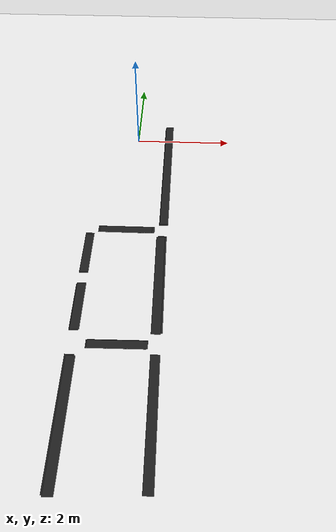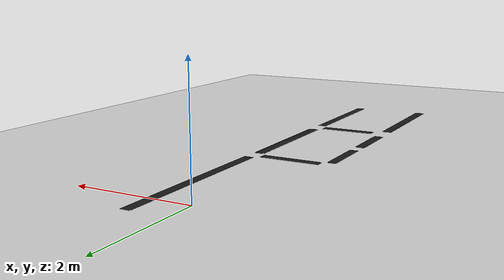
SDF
<sdf version="1.7">
 <world name="default">
  <model name="ground_plane">
   <static>1</static>
   <link name="link">
    <collision name="collision">
     <geometry><plane><normal>0 0 1</normal><size>100 100</size></plane></geometry>
     <surface>
      <contact><collide_bitmask>65535</collide_bitmask></contact>
      <friction><ode><mu>100</mu><mu2>50</mu2></ode></friction>
     </surface>
    </collision>
    <visual name="visual">
     <cast_shadows>0</cast_shadows>
     <geometry><plane><normal>0 0 1</normal><size>100 100</size></plane></geometry>
     <material>
      <script><uri>file://media/materials/scripts/gazebo.material</uri><name>Gazebo/White</name></script>
     </material>
    </visual>
   </link>
  </model>
  <model name="unit_box_clone_0_clone_clone_0">
   <link name="link">
    <inertial>
     <mass>1</mass>
     <inertia>
      <ixx>0.166667</ixx>
      <ixy>0</ixy>
      <ixz>0</ixz>
      <iyy>0.166667</iyy>
      <iyz>0</iyz>
      <izz>0.166667</izz>
     </inertia>
    </inertial>
    <visual name="visual">
     <geometry><box><size>1 0.160776 0.000937</size></box></geometry>
     <material>
      <script><name>Gazebo/Black</name><uri>file://media/materials/scripts/gazebo.material</uri></script>
      <shader type="pixel"><normal_map>__default__</normal_map></shader>
      <ambient>0 0 0 1</ambient>
      <diffuse>0 0 0 1</diffuse>
      <specular>0.1 0.1 0.1 1</specular>
      <emissive>0 0 0 1</emissive>
     </material>
    </visual>
    <collision name="collision">
     <geometry><box><size>1 0.160776 0.000937</size></box></geometry>
     <surface>
      <friction>
       <ode><mu>1</mu><mu2>1</mu2><fdir1>0 0 0</fdir1><slip1>0</slip1><slip2>0</slip2></ode>
       <torsional>
        <coefficient>1</coefficient>
        <patch_radius>0</patch_radius>
        <surface_radius>0</surface_radius>
        <use_patch_radius>1</use_patch_radius>
        <ode><slip>0</slip></ode>
       </torsional>
      </friction>
      <bounce><restitution_coefficient>0</restitution_coefficient><threshold>1e+06</threshold></bounce>
      <contact>
       <collide_without_contact>0</collide_without_contact>
       <collide_without_contact_bitmask>1</collide_without_contact_bitmask>
       <collide_bitmask>1</collide_bitmask>
       <ode>
        <soft_cfm>0</soft_cfm>
        <soft_erp>0.2</soft_erp>
        <kp>1e+13</kp>
        <kd>1</kd>
        <max_vel>0.01</max_vel>
        <min_depth>0</min_depth>
       </ode>
       <bullet>
        <split_impulse>1</split_impulse>
        <split_impulse_penetration_threshold>-0.01</split_impulse_penetration_threshold>
        <soft_cfm>0</soft_cfm>
        <soft_erp>0.2</soft_erp>
        <kp>1e+13</kp>
        <kd>1</kd>
       </bullet>
      </contact>
     </surface>
    </collision>
   </link>
   <static>0</static>
   <pose>0.00749 -2.7906 0.002011 6e-06 0.000285 -7.8e-05</pose>
  </model>
  <model name="unit_box_clone_0_clone_clone_clone_clone_clone_clone_clone_0_clone">
   <link name="link">
    <inertial>
     <mass>1</mass>
     <inertia>
      <ixx>0.166667</ixx>
      <ixy>0</ixy>
      <ixz>0</ixz>
      <iyy>0.166667</iyy>
      <iyz>0</iyz>
      <izz>0.166667</izz>
     </inertia>
    </inertial>
    <visual name="visual">
     <geometry><box><size>3.16167 0.161571 0.000937</size></box></geometry>
     <material>
      <script><name>Gazebo/Black</name><uri>file://media/materials/scripts/gazebo.material</uri></script>
      <shader type="pixel"><normal_map>__default__</normal_map></shader>
      <ambient>0 0 0 1</ambient>
      <diffuse>0 0 0 1</diffuse>
      <specular>0.1 0.1 0.1 1</specular>
      <emissive>0 0 0 1</emissive>
     </material>
    </visual>
    <collision name="collision">
     <geometry><box><size>3.16167 0.161571 0.000937</size></box></geometry>
     <surface>
      <friction>
       <ode><mu>1</mu><mu2>1</mu2><fdir1>0 0 0</fdir1><slip1>0</slip1><slip2>0</slip2></ode>
       <torsional>
        <coefficient>1</coefficient>
        <patch_radius>0</patch_radius>
        <surface_radius>0</surface_radius>
        <use_patch_radius>1</use_patch_radius>
        <ode><slip>0</slip></ode>
       </torsional>
      </friction>
      <bounce><restitution_coefficient>0</restitution_coefficient><threshold>1e+06</threshold></bounce>
      <contact>
       <collide_without_contact>0</collide_without_contact>
       <collide_without_contact_bitmask>1</collide_without_contact_bitmask>
       <collide_bitmask>1</collide_bitmask>
       <ode>
        <soft_cfm>0</soft_cfm>
        <soft_erp>0.2</soft_erp>
        <kp>1e+13</kp>
        <kd>1</kd>
        <max_vel>0.01</max_vel>
        <min_depth>0</min_depth>
       </ode>
       <bullet>
        <split_impulse>1</split_impulse>
        <split_impulse_penetration_threshold>-0.01</split_impulse_penetration_threshold>
        <soft_cfm>0</soft_cfm>
        <soft_erp>0.2</soft_erp>
        <kp>1e+13</kp>
        <kd>1</kd>
       </bullet>
      </contact>
     </surface>
    </collision>
   </link>
   <static>0</static>
   <pose>0.685812 -1.06745 -0.000124 -1.3e-05 -0.000376 -1.57339</pose>
  </model>
  <model name="unit_box_clone_0_clone_clone_0_clone_clone">
   <link name="link">
    <inertial>
     <mass>1</mass>
     <inertia>
      <ixx>0.166667</ixx>
      <ixy>0</ixy>
      <ixz>0</ixz>
      <iyy>0.166667</iyy>
      <iyz>0</iyz>
      <izz>0.166667</izz>
     </inertia>
    </inertial>
    <visual name="visual">
     <geometry><box><size>2.22866 0.160776 0.000937</size></box></geometry>
     <material>
      <script><name>Gazebo/Black</name><uri>file://media/materials/scripts/gazebo.material</uri></script>
      <shader type="pixel"><normal_map>__default__</normal_map></shader>
      <ambient>0 0 0 1</ambient>
      <diffuse>0 0 0 1</diffuse>
      <specular>0.1 0.1 0.1 1</specular>
      <emissive>0 0 0 1</emissive>
     </material>
    </visual>
    <collision name="collision">
     <geometry><box><size>2.22866 0.160776 0.000937</size></box></geometry>
     <surface>
      <friction>
       <ode><mu>1</mu><mu2>1</mu2><fdir1>0 0 0</fdir1><slip1>0</slip1><slip2>0</slip2></ode>
       <torsional>
        <coefficient>1</coefficient>
        <patch_radius>0</patch_radius>
        <surface_radius>0</surface_radius>
        <use_patch_radius>1</use_patch_radius>
        <ode><slip>0</slip></ode>
       </torsional>
      </friction>
      <bounce><restitution_coefficient>0</restitution_coefficient><threshold>1e+06</threshold></bounce>
      <contact>
       <collide_without_contact>0</collide_without_contact>
       <collide_without_contact_bitmask>1</collide_without_contact_bitmask>
       <collide_bitmask>1</collide_bitmask>
       <ode>
        <soft_cfm>0</soft_cfm>
        <soft_erp>0.2</soft_erp>
        <kp>1e+13</kp>
        <kd>1</kd>
        <max_vel>0.01</max_vel>
        <min_depth>0</min_depth>
       </ode>
       <bullet>
        <split_impulse>1</split_impulse>
        <split_impulse_penetration_threshold>-0.01</split_impulse_penetration_threshold>
        <soft_cfm>0</soft_cfm>
        <soft_erp>0.2</soft_erp>
        <kp>1e+13</kp>
        <kd>1</kd>
       </bullet>
      </contact>
     </surface>
    </collision>
   </link>
   <static>0</static>
   <pose>0.676438 -4.06335 0.000413 -0 -5e-05 -1.56233</pose>
  </model>
  <model name="unit_box_clone_0_clone_clone_0_clone_clone_clone_1">
   <link name="link">
    <inertial>
     <mass>1</mass>
     <inertia>
      <ixx>0.166667</ixx>
      <ixy>0</ixy>
      <ixz>0</ixz>
      <iyy>0.166667</iyy>
      <iyz>0</iyz>
      <izz>0.166667</izz>
     </inertia>
    </inertial>
    <visual name="visual">
     <geometry><box><size>1 0.160776 0.000937</size></box></geometry>
     <material>
      <script><name>Gazebo/Black</name><uri>file://media/materials/scripts/gazebo.material</uri></script>
      <shader type="pixel"><normal_map>__default__</normal_map></shader>
      <ambient>0 0 0 1</ambient>
      <diffuse>0 0 0 1</diffuse>
      <specular>0.1 0.1 0.1 1</specular>
      <emissive>0 0 0 1</emissive>
     </material>
    </visual>
    <collision name="collision">
     <geometry><box><size>1 0.160776 0.000937</size></box></geometry>
     <surface>
      <friction>
       <ode><mu>1</mu><mu2>1</mu2><fdir1>0 0 0</fdir1><slip1>0</slip1><slip2>0</slip2></ode>
       <torsional>
        <coefficient>1</coefficient>
        <patch_radius>0</patch_radius>
        <surface_radius>0</surface_radius>
        <use_patch_radius>1</use_patch_radius>
        <ode><slip>0</slip></ode>
       </torsional>
      </friction>
      <bounce><restitution_coefficient>0</restitution_coefficient><threshold>1e+06</threshold></bounce>
      <contact>
       <collide_without_contact>0</collide_without_contact>
       <collide_without_contact_bitmask>1</collide_without_contact_bitmask>
       <collide_bitmask>1</collide_bitmask>
       <ode>
        <soft_cfm>0</soft_cfm>
        <soft_erp>0.2</soft_erp>
        <kp>1e+13</kp>
        <kd>1</kd>
        <max_vel>0.01</max_vel>
        <min_depth>0</min_depth>
       </ode>
       <bullet>
        <split_impulse>1</split_impulse>
        <split_impulse_penetration_threshold>-0.01</split_impulse_penetration_threshold>
        <soft_cfm>0</soft_cfm>
        <soft_erp>0.2</soft_erp>
        <kp>1e+13</kp>
        <kd>1</kd>
       </bullet>
      </contact>
     </surface>
    </collision>
   </link>
   <static>0</static>
   <pose>-0.723755 -4.66652 0.000461 0 1.5e-05 -1.56225</pose>
  </model>
  <model name="unit_box_clone_0_clone_clone_0_clone_1">
   <link name="link">
    <inertial>
     <mass>1</mass>
     <inertia>
      <ixx>0.166667</ixx>
      <ixy>0</ixy>
      <ixz>0</ixz>
      <iyy>0.166667</iyy>
      <iyz>0</iyz>
      <izz>0.166667</izz>
     </inertia>
    </inertial>
    <visual name="visual">
     <geometry><box><size>1 0.160776 0.000937</size></box></geometry>
     <material>
      <script><name>Gazebo/Black</name><uri>file://media/materials/scripts/gazebo.material</uri></script>
      <shader type="pixel"><normal_map>__default__</normal_map></shader>
      <ambient>0 0 0 1</ambient>
      <diffuse>0 0 0 1</diffuse>
      <specular>0.1 0.1 0.1 1</specular>
      <emissive>0 0 0 1</emissive>
     </material>
    </visual>
    <collision name="collision">
     <geometry><box><size>1 0.160776 0.000937</size></box></geometry>
     <surface>
      <friction>
       <ode><mu>1</mu><mu2>1</mu2><fdir1>0 0 0</fdir1><slip1>0</slip1><slip2>0</slip2></ode>
       <torsional>
        <coefficient>1</coefficient>
        <patch_radius>0</patch_radius>
        <surface_radius>0</surface_radius>
        <use_patch_radius>1</use_patch_radius>
        <ode><slip>0</slip></ode>
       </torsional>
      </friction>
      <bounce><restitution_coefficient>0</restitution_coefficient><threshold>1e+06</threshold></bounce>
      <contact>
       <collide_without_contact>0</collide_without_contact>
       <collide_without_contact_bitmask>1</collide_without_contact_bitmask>
       <collide_bitmask>1</collide_bitmask>
       <ode>
        <soft_cfm>0</soft_cfm>
        <soft_erp>0.2</soft_erp>
        <kp>1e+13</kp>
        <kd>1</kd>
        <max_vel>0.01</max_vel>
        <min_depth>0</min_depth>
       </ode>
       <bullet>
        <split_impulse>1</split_impulse>
        <split_impulse_penetration_threshold>-0.01</split_impulse_penetration_threshold>
        <soft_cfm>0</soft_cfm>
        <soft_erp>0.2</soft_erp>
        <kp>1e+13</kp>
        <kd>1</kd>
       </bullet>
      </contact>
     </surface>
    </collision>
   </link>
   <static>0</static>
   <pose>0.039276 -5.41097 0.000324 5e-06 0.000288 0.011983</pose>
  </model>
  <model name="unit_box_clone_0_clone_clone_0_clone_clone_clone_2_clone">
   <link name="link">
    <inertial>
     <mass>1</mass>
     <inertia>
      <ixx>0.166667</ixx>
      <ixy>0</ixy>
      <ixz>0</ixz>
      <iyy>0.166667</iyy>
      <iyz>0</iyz>
      <izz>0.166667</izz>
     </inertia>
    </inertial>
    <visual name="visual">
     <geometry><box><size>1 0.160776 0.000937</size></box></geometry>
     <material>
      <script><name>Gazebo/Black</name><uri>file://media/materials/scripts/gazebo.material</uri></script>
      <shader type="pixel"><normal_map>__default__</normal_map></shader>
      <ambient>0 0 0 1</ambient>
      <diffuse>0 0 0 1</diffuse>
      <specular>0.1 0.1 0.1 1</specular>
      <emissive>0 0 0 1</emissive>
     </material>
    </visual>
    <collision name="collision">
     <geometry><box><size>1 0.160776 0.000937</size></box></geometry>
     <surface>
      <friction>
       <ode><mu>1</mu><mu2>1</mu2><fdir1>0 0 0</fdir1><slip1>0</slip1><slip2>0</slip2></ode>
       <torsional>
        <coefficient>1</coefficient>
        <patch_radius>0</patch_radius>
        <surface_radius>0</surface_radius>
        <use_patch_radius>1</use_patch_radius>
        <ode><slip>0</slip></ode>
       </torsional>
      </friction>
      <bounce><restitution_coefficient>0</restitution_coefficient><threshold>1e+06</threshold></bounce>
      <contact>
       <collide_without_contact>0</collide_without_contact>
       <collide_without_contact_bitmask>1</collide_without_contact_bitmask>
       <collide_bitmask>1</collide_bitmask>
       <ode>
        <soft_cfm>0</soft_cfm>
        <soft_erp>0.2</soft_erp>
        <kp>1e+13</kp>
        <kd>1</kd>
        <max_vel>0.01</max_vel>
        <min_depth>0</min_depth>
       </ode>
       <bullet>
        <split_impulse>1</split_impulse>
        <split_impulse_penetration_threshold>-0.01</split_impulse_penetration_threshold>
        <soft_cfm>0</soft_cfm>
        <soft_erp>0.2</soft_erp>
        <kp>1e+13</kp>
        <kd>1</kd>
       </bullet>
      </contact>
     </surface>
    </collision>
   </link>
   <static>0</static>
   <pose>-0.719245 -3.40895 0.000468 2e-06 1e-06 -1.56566</pose>
  </model>
  <model name="unit_box_clone_0_clone_clone_0_clone_0_clone_1">
   <link name="link">
    <inertial>
     <mass>1</mass>
     <inertia>
      <ixx>0.166667</ixx>
      <ixy>0</ixy>
      <ixz>0</ixz>
      <iyy>0.166667</iyy>
      <iyz>0</iyz>
      <izz>0.166667</izz>
     </inertia>
    </inertial>
    <visual name="visual">
     <geometry><box><size>1 0.160776 0.000937</size></box></geometry>
     <material>
      <script><name>Gazebo/Black</name><uri>file://media/materials/scripts/gazebo.material</uri></script>
      <shader type="pixel"><normal_map>__default__</normal_map></shader>
      <ambient>0 0 0 1</ambient>
      <diffuse>0 0 0 1</diffuse>
      <specular>0.1 0.1 0.1 1</specular>
      <emissive>0 0 0 1</emissive>
     </material>
    </visual>
    <collision name="collision">
     <geometry><box><size>1 0.160776 0.000937</size></box></geometry>
     <surface>
      <friction>
       <ode><mu>1</mu><mu2>1</mu2><fdir1>0 0 0</fdir1><slip1>0</slip1><slip2>0</slip2></ode>
       <torsional>
        <coefficient>1</coefficient>
        <patch_radius>0</patch_radius>
        <surface_radius>0</surface_radius>
        <use_patch_radius>1</use_patch_radius>
        <ode><slip>0</slip></ode>
       </torsional>
      </friction>
      <bounce><restitution_coefficient>0</restitution_coefficient><threshold>1e+06</threshold></bounce>
      <contact>
       <collide_without_contact>0</collide_without_contact>
       <collide_without_contact_bitmask>1</collide_without_contact_bitmask>
       <collide_bitmask>1</collide_bitmask>
       <ode>
        <soft_cfm>0</soft_cfm>
        <soft_erp>0.2</soft_erp>
        <kp>1e+13</kp>
        <kd>1</kd>
        <max_vel>0.01</max_vel>
        <min_depth>0</min_depth>
       </ode>
       <bullet>
        <split_impulse>1</split_impulse>
        <split_impulse_penetration_threshold>-0.01</split_impulse_penetration_threshold>
        <soft_cfm>0</soft_cfm>
        <soft_erp>0.2</soft_erp>
        <kp>1e+13</kp>
        <kd>1</kd>
       </bullet>
      </contact>
     </surface>
    </collision>
   </link>
   <static>0</static>
   <pose>-0.042138 -2.79182 0.002853 8e-06 6.7e-05 0.000469</pose>
  </model>
  <model name="unit_box_clone_0_clone_clone_0_clone_0_clone_2">
   <link name="link">
    <inertial>
     <mass>1</mass>
     <inertia>
      <ixx>0.166667</ixx>
      <ixy>0</ixy>
      <ixz>0</ixz>
      <iyy>0.166667</iyy>
      <iyz>0</iyz>
      <izz>0.166667</izz>
     </inertia>
    </inertial>
    <visual name="visual">
     <geometry><box><size>1 0.160776 0.000937</size></box></geometry>
     <material>
      <script><name>Gazebo/Black</name><uri>file://media/materials/scripts/gazebo.material</uri></script>
      <shader type="pixel"><normal_map>__default__</normal_map></shader>
      <ambient>0 0 0 1</ambient>
      <diffuse>0 0 0 1</diffuse>
      <specular>0.1 0.1 0.1 1</specular>
      <emissive>0 0 0 1</emissive>
     </material>
    </visual>
    <collision name="collision">
     <geometry><box><size>1 0.160776 0.000937</size></box></geometry>
     <surface>
      <friction>
       <ode><mu>1</mu><mu2>1</mu2><fdir1>0 0 0</fdir1><slip1>0</slip1><slip2>0</slip2></ode>
       <torsional>
        <coefficient>1</coefficient>
        <patch_radius>0</patch_radius>
        <surface_radius>0</surface_radius>
        <use_patch_radius>1</use_patch_radius>
        <ode><slip>0</slip></ode>
       </torsional>
      </friction>
      <bounce><restitution_coefficient>0</restitution_coefficient><threshold>1e+06</threshold></bounce>
      <contact>
       <collide_without_contact>0</collide_without_contact>
       <collide_without_contact_bitmask>1</collide_without_contact_bitmask>
       <collide_bitmask>1</collide_bitmask>
       <ode>
        <soft_cfm>0</soft_cfm>
        <soft_erp>0.2</soft_erp>
        <kp>1e+13</kp>
        <kd>1</kd>
        <max_vel>0.01</max_vel>
        <min_depth>0</min_depth>
       </ode>
       <bullet>
        <split_impulse>1</split_impulse>
        <split_impulse_penetration_threshold>-0.01</split_impulse_penetration_threshold>
        <soft_cfm>0</soft_cfm>
        <soft_erp>0.2</soft_erp>
        <kp>1e+13</kp>
        <kd>1</kd>
       </bullet>
      </contact>
     </surface>
    </collision>
   </link>
   <static>0</static>
   <pose>-0.026069 -2.79162 0.001312 4e-06 -0.000206 -0.001029</pose>
  </model>
  <model name="unit_box_clone_0_clone_clone_0_clone_0_clone_3">
   <link name="link">
    <inertial>
     <mass>1</mass>
     <inertia>
      <ixx>0.166667</ixx>
      <ixy>0</ixy>
      <ixz>0</ixz>
      <iyy>0.166667</iyy>
      <iyz>0</iyz>
      <izz>0.166667</izz>
     </inertia>
    </inertial>
    <visual name="visual">
     <geometry><box><size>1 0.160776 0.000937</size></box></geometry>
     <material>
      <script><name>Gazebo/Black</name><uri>file://media/materials/scripts/gazebo.material</uri></script>
      <shader type="pixel"><normal_map>__default__</normal_map></shader>
      <ambient>0 0 0 1</ambient>
      <diffuse>0 0 0 1</diffuse>
      <specular>0.1 0.1 0.1 1</specular>
      <emissive>0 0 0 1</emissive>
     </material>
    </visual>
    <collision name="collision">
     <geometry><box><size>1 0.160776 0.000937</size></box></geometry>
     <surface>
      <friction>
       <ode><mu>1</mu><mu2>1</mu2><fdir1>0 0 0</fdir1><slip1>0</slip1><slip2>0</slip2></ode>
       <torsional>
        <coefficient>1</coefficient>
        <patch_radius>0</patch_radius>
        <surface_radius>0</surface_radius>
        <use_patch_radius>1</use_patch_radius>
        <ode><slip>0</slip></ode>
       </torsional>
      </friction>
      <bounce><restitution_coefficient>0</restitution_coefficient><threshold>1e+06</threshold></bounce>
      <contact>
       <collide_without_contact>0</collide_without_contact>
       <collide_without_contact_bitmask>1</collide_without_contact_bitmask>
       <collide_bitmask>1</collide_bitmask>
       <ode>
        <soft_cfm>0</soft_cfm>
        <soft_erp>0.2</soft_erp>
        <kp>1e+13</kp>
        <kd>1</kd>
        <max_vel>0.01</max_vel>
        <min_depth>0</min_depth>
       </ode>
       <bullet>
        <split_impulse>1</split_impulse>
        <split_impulse_penetration_threshold>-0.01</split_impulse_penetration_threshold>
        <soft_cfm>0</soft_cfm>
        <soft_erp>0.2</soft_erp>
        <kp>1e+13</kp>
        <kd>1</kd>
       </bullet>
      </contact>
     </surface>
    </collision>
   </link>
   <static>0</static>
   <pose>-0.073142 -2.79257 0.000468 2e-06 0 -0.004545</pose>
  </model>
  <model name="unit_box_clone_0_clone_clone_0_clone_1_clone_0">
   <link name="link">
    <inertial>
     <mass>1</mass>
     <inertia>
      <ixx>0.166667</ixx>
      <ixy>0</ixy>
      <ixz>0</ixz>
      <iyy>0.166667</iyy>
      <iyz>0</iyz>
      <izz>0.166667</izz>
     </inertia>
    </inertial>
    <visual name="visual">
     <geometry><box><size>1 0.160776 0.000937</size></box></geometry>
     <material>
      <script><name>Gazebo/Black</name><uri>file://media/materials/scripts/gazebo.material</uri></script>
      <shader type="pixel"><normal_map>__default__</normal_map></shader>
      <ambient>0 0 0 1</ambient>
      <diffuse>0 0 0 1</diffuse>
      <specular>0.1 0.1 0.1 1</specular>
      <emissive>0 0 0 1</emissive>
     </material>
    </visual>
    <collision name="collision">
     <geometry><box><size>1 0.160776 0.000937</size></box></geometry>
     <surface>
      <friction>
       <ode><mu>1</mu><mu2>1</mu2><fdir1>0 0 0</fdir1><slip1>0</slip1><slip2>0</slip2></ode>
       <torsional>
        <coefficient>1</coefficient>
        <patch_radius>0</patch_radius>
        <surface_radius>0</surface_radius>
        <use_patch_radius>1</use_patch_radius>
        <ode><slip>0</slip></ode>
       </torsional>
      </friction>
      <bounce><restitution_coefficient>0</restitution_coefficient><threshold>1e+06</threshold></bounce>
      <contact>
       <collide_without_contact>0</collide_without_contact>
       <collide_without_contact_bitmask>1</collide_without_contact_bitmask>
       <collide_bitmask>1</collide_bitmask>
       <ode>
        <soft_cfm>0</soft_cfm>
        <soft_erp>0.2</soft_erp>
        <kp>1e+13</kp>
        <kd>1</kd>
        <max_vel>0.01</max_vel>
        <min_depth>0</min_depth>
       </ode>
       <bullet>
        <split_impulse>1</split_impulse>
        <split_impulse_penetration_threshold>-0.01</split_impulse_penetration_threshold>
        <soft_cfm>0</soft_cfm>
        <soft_erp>0.2</soft_erp>
        <kp>1e+13</kp>
        <kd>1</kd>
       </bullet>
      </contact>
     </surface>
    </collision>
   </link>
   <static>0</static>
   <pose>0.017702 -5.42064 0.001267 4e-06 0.000288 0.009246</pose>
  </model>
  <model name="unit_box_clone_0_clone_clone_0_clone_1_clone_1">
   <link name="link">
    <inertial>
     <mass>1</mass>
     <inertia>
      <ixx>0.166667</ixx>
      <ixy>0</ixy>
      <ixz>0</ixz>
      <iyy>0.166667</iyy>
      <iyz>0</iyz>
      <izz>0.166667</izz>
     </inertia>
    </inertial>
    <visual name="visual">
     <geometry><box><size>1 0.160776 0.000937</size></box></geometry>
     <material>
      <script><name>Gazebo/Black</name><uri>file://media/materials/scripts/gazebo.material</uri></script>
      <shader type="pixel"><normal_map>__default__</normal_map></shader>
      <ambient>0 0 0 1</ambient>
      <diffuse>0 0 0 1</diffuse>
      <specular>0.1 0.1 0.1 1</specular>
      <emissive>0 0 0 1</emissive>
     </material>
    </visual>
    <collision name="collision">
     <geometry><box><size>1 0.160776 0.000937</size></box></geometry>
     <surface>
      <friction>
       <ode><mu>1</mu><mu2>1</mu2><fdir1>0 0 0</fdir1><slip1>0</slip1><slip2>0</slip2></ode>
       <torsional>
        <coefficient>1</coefficient>
        <patch_radius>0</patch_radius>
        <surface_radius>0</surface_radius>
        <use_patch_radius>1</use_patch_radius>
        <ode><slip>0</slip></ode>
       </torsional>
      </friction>
      <bounce><restitution_coefficient>0</restitution_coefficient><threshold>1e+06</threshold></bounce>
      <contact>
       <collide_without_contact>0</collide_without_contact>
       <collide_without_contact_bitmask>1</collide_without_contact_bitmask>
       <collide_bitmask>1</collide_bitmask>
       <ode>
        <soft_cfm>0</soft_cfm>
        <soft_erp>0.2</soft_erp>
        <kp>1e+13</kp>
        <kd>1</kd>
        <max_vel>0.01</max_vel>
        <min_depth>0</min_depth>
       </ode>
       <bullet>
        <split_impulse>1</split_impulse>
        <split_impulse_penetration_threshold>-0.01</split_impulse_penetration_threshold>
        <soft_cfm>0</soft_cfm>
        <soft_erp>0.2</soft_erp>
        <kp>1e+13</kp>
        <kd>1</kd>
       </bullet>
      </contact>
     </surface>
    </collision>
   </link>
   <static>0</static>
   <pose>0.035382 -5.41948 0.002053 -6e-06 0.000578 0.010242</pose>
  </model>
  <model name="unit_box_clone_0_clone_clone_0_clone_clone_clone_1_clone_0">
   <link name="link">
    <inertial>
     <mass>1</mass>
     <inertia>
      <ixx>0.166667</ixx>
      <ixy>0</ixy>
      <ixz>0</ixz>
      <iyy>0.166667</iyy>
      <iyz>0</iyz>
      <izz>0.166667</izz>
     </inertia>
    </inertial>
    <visual name="visual">
     <geometry><box><size>1 0.160776 0.000937</size></box></geometry>
     <material>
      <script><name>Gazebo/Black</name><uri>file://media/materials/scripts/gazebo.material</uri></script>
      <shader type="pixel"><normal_map>__default__</normal_map></shader>
      <ambient>0 0 0 1</ambient>
      <diffuse>0 0 0 1</diffuse>
      <specular>0.1 0.1 0.1 1</specular>
      <emissive>0 0 0 1</emissive>
     </material>
    </visual>
    <collision name="collision">
     <geometry><box><size>1 0.160776 0.000937</size></box></geometry>
     <surface>
      <friction>
       <ode><mu>1</mu><mu2>1</mu2><fdir1>0 0 0</fdir1><slip1>0</slip1><slip2>0</slip2></ode>
       <torsional>
        <coefficient>1</coefficient>
        <patch_radius>0</patch_radius>
        <surface_radius>0</surface_radius>
        <use_patch_radius>1</use_patch_radius>
        <ode><slip>0</slip></ode>
       </torsional>
      </friction>
      <bounce><restitution_coefficient>0</restitution_coefficient><threshold>1e+06</threshold></bounce>
      <contact>
       <collide_without_contact>0</collide_without_contact>
       <collide_without_contact_bitmask>1</collide_without_contact_bitmask>
       <collide_bitmask>1</collide_bitmask>
       <ode>
        <soft_cfm>0</soft_cfm>
        <soft_erp>0.2</soft_erp>
        <kp>1e+13</kp>
        <kd>1</kd>
        <max_vel>0.01</max_vel>
        <min_depth>0</min_depth>
       </ode>
       <bullet>
        <split_impulse>1</split_impulse>
        <split_impulse_penetration_threshold>-0.01</split_impulse_penetration_threshold>
        <soft_cfm>0</soft_cfm>
        <soft_erp>0.2</soft_erp>
        <kp>1e+13</kp>
        <kd>1</kd>
       </bullet>
      </contact>
     </surface>
    </collision>
   </link>
   <static>0</static>
   <pose>-0.710976 -4.64803 0.001332 0 0.000153 -1.56275</pose>
  </model>
  <model name="unit_box_clone_0_clone_clone_clone_clone_clone_clone_clone_0_clone_clone">
   <link name="link">
    <inertial>
     <mass>1</mass>
     <inertia>
      <ixx>0.166667</ixx>
      <ixy>0</ixy>
      <ixz>0</ixz>
      <iyy>0.166667</iyy>
      <iyz>0</iyz>
      <izz>0.166667</izz>
     </inertia>
    </inertial>
    <visual name="visual">
     <geometry><box><size>3.16167 0.161571 0.000937</size></box></geometry>
     <material>
      <script><name>Gazebo/Black</name><uri>file://media/materials/scripts/gazebo.material</uri></script>
      <shader type="pixel"><normal_map>__default__</normal_map></shader>
      <ambient>0 0 0 1</ambient>
      <diffuse>0 0 0 1</diffuse>
      <specular>0.1 0.1 0.1 1</specular>
      <emissive>0 0 0 1</emissive>
     </material>
    </visual>
    <collision name="collision">
     <geometry><box><size>3.16167 0.161571 0.000937</size></box></geometry>
     <surface>
      <friction>
       <ode><mu>1</mu><mu2>1</mu2><fdir1>0 0 0</fdir1><slip1>0</slip1><slip2>0</slip2></ode>
       <torsional>
        <coefficient>1</coefficient>
        <patch_radius>0</patch_radius>
        <surface_radius>0</surface_radius>
        <use_patch_radius>1</use_patch_radius>
        <ode><slip>0</slip></ode>
       </torsional>
      </friction>
      <bounce><restitution_coefficient>0</restitution_coefficient><threshold>1e+06</threshold></bounce>
      <contact>
       <collide_without_contact>0</collide_without_contact>
       <collide_without_contact_bitmask>1</collide_without_contact_bitmask>
       <collide_bitmask>1</collide_bitmask>
       <ode>
        <soft_cfm>0</soft_cfm>
        <soft_erp>0.2</soft_erp>
        <kp>1e+13</kp>
        <kd>1</kd>
        <max_vel>0.01</max_vel>
        <min_depth>0</min_depth>
       </ode>
       <bullet>
        <split_impulse>1</split_impulse>
        <split_impulse_penetration_threshold>-0.01</split_impulse_penetration_threshold>
        <soft_cfm>0</soft_cfm>
        <soft_erp>0.2</soft_erp>
        <kp>1e+13</kp>
        <kd>1</kd>
       </bullet>
      </contact>
     </surface>
    </collision>
   </link>
   <static>0</static>
   <pose>0.675016 -1.07694 8.3e-05 4e-06 0.000244 -1.57272</pose>
  </model>
  <model name="unit_box_clone_0_clone_clone_clone_clone_clone_clone_clone_0_clone_clone_0">
   <link name="link">
    <inertial>
     <mass>1</mass>
     <inertia>
      <ixx>0.166667</ixx>
      <ixy>0</ixy>
      <ixz>0</ixz>
      <iyy>0.166667</iyy>
      <iyz>0</iyz>
      <izz>0.166667</izz>
     </inertia>
    </inertial>
    <visual name="visual">
     <geometry><box><size>3.16167 0.161571 0.000937</size></box></geometry>
     <material>
      <script><name>Gazebo/Black</name><uri>file://media/materials/scripts/gazebo.material</uri></script>
      <shader type="pixel"><normal_map>__default__</normal_map></shader>
      <ambient>0 0 0 1</ambient>
      <diffuse>0 0 0 1</diffuse>
      <specular>0.1 0.1 0.1 1</specular>
      <emissive>0 0 0 1</emissive>
     </material>
    </visual>
    <collision name="collision">
     <geometry><box><size>3.16167 0.161571 0.000937</size></box></geometry>
     <surface>
      <friction>
       <ode><mu>1</mu><mu2>1</mu2><fdir1>0 0 0</fdir1><slip1>0</slip1><slip2>0</slip2></ode>
       <torsional>
        <coefficient>1</coefficient>
        <patch_radius>0</patch_radius>
        <surface_radius>0</surface_radius>
        <use_patch_radius>1</use_patch_radius>
        <ode><slip>0</slip></ode>
       </torsional>
      </friction>
      <bounce><restitution_coefficient>0</restitution_coefficient><threshold>1e+06</threshold></bounce>
      <contact>
       <collide_without_contact>0</collide_without_contact>
       <collide_without_contact_bitmask>1</collide_without_contact_bitmask>
       <collide_bitmask>1</collide_bitmask>
       <ode>
        <soft_cfm>0</soft_cfm>
        <soft_erp>0.2</soft_erp>
        <kp>1e+13</kp>
        <kd>1</kd>
        <max_vel>0.01</max_vel>
        <min_depth>0</min_depth>
       </ode>
       <bullet>
        <split_impulse>1</split_impulse>
        <split_impulse_penetration_threshold>-0.01</split_impulse_penetration_threshold>
        <soft_cfm>0</soft_cfm>
        <soft_erp>0.2</soft_erp>
        <kp>1e+13</kp>
        <kd>1</kd>
       </bullet>
      </contact>
     </surface>
    </collision>
   </link>
   <static>0</static>
   <pose>0.685573 -1.03819 0.000803 -1.1e-05 -0.000173 -1.57298</pose>
  </model>
  <model name="unit_box_clone_0_clone_clone_0_clone_clone_clone_2_clone_clone_0">
   <link name="link">
    <inertial>
     <mass>1</mass>
     <inertia>
      <ixx>0.166667</ixx>
      <ixy>0</ixy>
      <ixz>0</ixz>
      <iyy>0.166667</iyy>
      <iyz>0</iyz>
      <izz>0.166667</izz>
     </inertia>
    </inertial>
    <visual name="visual">
     <geometry><box><size>0.939585 0.160776 0.000937</size></box></geometry>
     <material>
      <script><name>Gazebo/Black</name><uri>file://media/materials/scripts/gazebo.material</uri></script>
      <shader type="pixel"><normal_map>__default__</normal_map></shader>
      <ambient>0 0 0 1</ambient>
      <diffuse>0 0 0 1</diffuse>
      <specular>0.1 0.1 0.1 1</specular>
      <emissive>0 0 0 1</emissive>
     </material>
    </visual>
    <collision name="collision">
     <geometry><box><size>0.939585 0.160776 0.000937</size></box></geometry>
     <surface>
      <friction>
       <ode><mu>1</mu><mu2>1</mu2><fdir1>0 0 0</fdir1><slip1>0</slip1><slip2>0</slip2></ode>
       <torsional>
        <coefficient>1</coefficient>
        <patch_radius>0</patch_radius>
        <surface_radius>0</surface_radius>
        <use_patch_radius>1</use_patch_radius>
        <ode><slip>0</slip></ode>
       </torsional>
      </friction>
      <bounce><restitution_coefficient>0</restitution_coefficient><threshold>1e+06</threshold></bounce>
      <contact>
       <collide_without_contact>0</collide_without_contact>
       <collide_without_contact_bitmask>1</collide_without_contact_bitmask>
       <collide_bitmask>1</collide_bitmask>
       <ode>
        <soft_cfm>0</soft_cfm>
        <soft_erp>0.2</soft_erp>
        <kp>1e+13</kp>
        <kd>1</kd>
        <max_vel>0.01</max_vel>
        <min_depth>0</min_depth>
       </ode>
       <bullet>
        <split_impulse>1</split_impulse>
        <split_impulse_penetration_threshold>-0.01</split_impulse_penetration_threshold>
        <soft_cfm>0</soft_cfm>
        <soft_erp>0.2</soft_erp>
        <kp>1e+13</kp>
        <kd>1</kd>
       </bullet>
      </contact>
     </surface>
    </collision>
   </link>
   <static>0</static>
   <pose>-0.720007 -3.4204 0.001406 8e-06 2e-06 -1.56952</pose>
  </model>
  <model name="unit_box_clone_0_clone_clone_0_clone_clone_clone_3">
   <link name="link">
    <inertial>
     <mass>1</mass>
     <inertia>
      <ixx>0.166667</ixx>
      <ixy>0</ixy>
      <ixz>0</ixz>
      <iyy>0.166667</iyy>
      <iyz>0</iyz>
      <izz>0.166667</izz>
     </inertia>
    </inertial>
    <visual name="visual">
     <geometry><box><size>2.22866 0.160776 0.000937</size></box></geometry>
     <material>
      <script><name>Gazebo/Black</name><uri>file://media/materials/scripts/gazebo.material</uri></script>
      <shader type="pixel"><normal_map>__default__</normal_map></shader>
      <ambient>0 0 0 1</ambient>
      <diffuse>0 0 0 1</diffuse>
      <specular>0.1 0.1 0.1 1</specular>
      <emissive>0 0 0 1</emissive>
     </material>
    </visual>
    <collision name="collision">
     <geometry><box><size>2.22866 0.160776 0.000937</size></box></geometry>
     <surface>
      <friction>
       <ode><mu>1</mu><mu2>1</mu2><fdir1>0 0 0</fdir1><slip1>0</slip1><slip2>0</slip2></ode>
       <torsional>
        <coefficient>1</coefficient>
        <patch_radius>0</patch_radius>
        <surface_radius>0</surface_radius>
        <use_patch_radius>1</use_patch_radius>
        <ode><slip>0</slip></ode>
       </torsional>
      </friction>
      <bounce><restitution_coefficient>0</restitution_coefficient><threshold>1e+06</threshold></bounce>
      <contact>
       <collide_without_contact>0</collide_without_contact>
       <collide_without_contact_bitmask>1</collide_without_contact_bitmask>
       <collide_bitmask>1</collide_bitmask>
       <ode>
        <soft_cfm>0</soft_cfm>
        <soft_erp>0.2</soft_erp>
        <kp>1e+13</kp>
        <kd>1</kd>
        <max_vel>0.01</max_vel>
        <min_depth>0</min_depth>
       </ode>
       <bullet>
        <split_impulse>1</split_impulse>
        <split_impulse_penetration_threshold>-0.01</split_impulse_penetration_threshold>
        <soft_cfm>0</soft_cfm>
        <soft_erp>0.2</soft_erp>
        <kp>1e+13</kp>
        <kd>1</kd>
       </bullet>
      </contact>
     </surface>
    </collision>
   </link>
   <static>0</static>
   <pose>0.645252 -4.08615 0.003169 4.1e-05 9.5e-05 -1.5625</pose>
  </model>
  <model name="unit_box_clone_0_clone_clone_0_clone_clone_clone_4_clone">
   <link name="link">
    <inertial>
     <mass>1</mass>
     <inertia>
      <ixx>0.166667</ixx>
      <ixy>0</ixy>
      <ixz>0</ixz>
      <iyy>0.166667</iyy>
      <iyz>0</iyz>
      <izz>0.166667</izz>
     </inertia>
    </inertial>
    <visual name="visual">
     <geometry><box><size>2.22866 0.160776 0.000937</size></box></geometry>
     <material>
      <script><name>Gazebo/Black</name><uri>file://media/materials/scripts/gazebo.material</uri></script>
      <shader type="pixel"><normal_map>__default__</normal_map></shader>
      <ambient>0 0 0 1</ambient>
      <diffuse>0 0 0 1</diffuse>
      <specular>0.1 0.1 0.1 1</specular>
      <emissive>0 0 0 1</emissive>
     </material>
    </visual>
    <collision name="collision">
     <geometry><box><size>2.22866 0.160776 0.000937</size></box></geometry>
     <surface>
      <friction>
       <ode><mu>1</mu><mu2>1</mu2><fdir1>0 0 0</fdir1><slip1>0</slip1><slip2>0</slip2></ode>
       <torsional>
        <coefficient>1</coefficient>
        <patch_radius>0</patch_radius>
        <surface_radius>0</surface_radius>
        <use_patch_radius>1</use_patch_radius>
        <ode><slip>0</slip></ode>
       </torsional>
      </friction>
      <bounce><restitution_coefficient>0</restitution_coefficient><threshold>1e+06</threshold></bounce>
      <contact>
       <collide_without_contact>0</collide_without_contact>
       <collide_without_contact_bitmask>1</collide_without_contact_bitmask>
       <collide_bitmask>1</collide_bitmask>
       <ode>
        <soft_cfm>0</soft_cfm>
        <soft_erp>0.2</soft_erp>
        <kp>1e+13</kp>
        <kd>1</kd>
        <max_vel>0.01</max_vel>
        <min_depth>0</min_depth>
       </ode>
       <bullet>
        <split_impulse>1</split_impulse>
        <split_impulse_penetration_threshold>-0.01</split_impulse_penetration_threshold>
        <soft_cfm>0</soft_cfm>
        <soft_erp>0.2</soft_erp>
        <kp>1e+13</kp>
        <kd>1</kd>
       </bullet>
      </contact>
     </surface>
    </collision>
   </link>
   <static>0</static>
   <pose>-0.704111 -6.74422 0.000469 1e-06 0 -1.56178</pose>
  </model>
  <model name="unit_box_clone_0_clone_clone_0_clone_clone_clone_4_clone_0">
   <link name="link">
    <inertial>
     <mass>1</mass>
     <inertia>
      <ixx>0.166667</ixx>
      <ixy>0</ixy>
      <ixz>0</ixz>
      <iyy>0.166667</iyy>
      <iyz>0</iyz>
      <izz>0.166667</izz>
     </inertia>
    </inertial>
    <visual name="visual">
     <geometry><box><size>2.22866 0.160776 0.000937</size></box></geometry>
     <material>
      <script><name>Gazebo/Black</name><uri>file://media/materials/scripts/gazebo.material</uri></script>
      <shader type="pixel"><normal_map>__default__</normal_map></shader>
      <ambient>0 0 0 1</ambient>
      <diffuse>0 0 0 1</diffuse>
      <specular>0.1 0.1 0.1 1</specular>
      <emissive>0 0 0 1</emissive>
     </material>
    </visual>
    <collision name="collision">
     <geometry><box><size>2.22866 0.160776 0.000937</size></box></geometry>
     <surface>
      <friction>
       <ode><mu>1</mu><mu2>1</mu2><fdir1>0 0 0</fdir1><slip1>0</slip1><slip2>0</slip2></ode>
       <torsional>
        <coefficient>1</coefficient>
        <patch_radius>0</patch_radius>
        <surface_radius>0</surface_radius>
        <use_patch_radius>1</use_patch_radius>
        <ode><slip>0</slip></ode>
       </torsional>
      </friction>
      <bounce><restitution_coefficient>0</restitution_coefficient><threshold>1e+06</threshold></bounce>
      <contact>
       <collide_without_contact>0</collide_without_contact>
       <collide_without_contact_bitmask>1</collide_without_contact_bitmask>
       <collide_bitmask>1</collide_bitmask>
       <ode>
        <soft_cfm>0</soft_cfm>
        <soft_erp>0.2</soft_erp>
        <kp>1e+13</kp>
        <kd>1</kd>
        <max_vel>0.01</max_vel>
        <min_depth>0</min_depth>
       </ode>
       <bullet>
        <split_impulse>1</split_impulse>
        <split_impulse_penetration_threshold>-0.01</split_impulse_penetration_threshold>
        <soft_cfm>0</soft_cfm>
        <soft_erp>0.2</soft_erp>
        <kp>1e+13</kp>
        <kd>1</kd>
       </bullet>
      </contact>
     </surface>
    </collision>
   </link>
   <static>0</static>
   <pose>-0.681591 -6.76899 0.001335 -7e-06 -6.5e-05 -1.56181</pose>
  </model>
  <model name="unit_box_clone_0_clone_clone_0_clone_clone_clone_4_clone_0_clone_2">
   <link name="link">
    <inertial>
     <mass>1</mass>
     <inertia>
      <ixx>0.166667</ixx>
      <ixy>0</ixy>
      <ixz>0</ixz>
      <iyy>0.166667</iyy>
      <iyz>0</iyz>
      <izz>0.166667</izz>
     </inertia>
    </inertial>
    <visual name="visual">
     <geometry><box><size>2.22866 0.160776 0.000937</size></box></geometry>
     <material>
      <script><name>Gazebo/Black</name><uri>file://media/materials/scripts/gazebo.material</uri></script>
      <shader type="pixel"><normal_map>__default__</normal_map></shader>
      <ambient>0 0 0 1</ambient>
      <diffuse>0 0 0 1</diffuse>
      <specular>0.1 0.1 0.1 1</specular>
      <emissive>0 0 0 1</emissive>
     </material>
    </visual>
    <collision name="collision">
     <geometry><box><size>2.22866 0.160776 0.000937</size></box></geometry>
     <surface>
      <friction>
       <ode><mu>1</mu><mu2>1</mu2><fdir1>0 0 0</fdir1><slip1>0</slip1><slip2>0</slip2></ode>
       <torsional>
        <coefficient>1</coefficient>
        <patch_radius>0</patch_radius>
        <surface_radius>0</surface_radius>
        <use_patch_radius>1</use_patch_radius>
        <ode><slip>0</slip></ode>
       </torsional>
      </friction>
      <bounce><restitution_coefficient>0</restitution_coefficient><threshold>1e+06</threshold></bounce>
      <contact>
       <collide_without_contact>0</collide_without_contact>
       <collide_without_contact_bitmask>1</collide_without_contact_bitmask>
       <collide_bitmask>1</collide_bitmask>
       <ode>
        <soft_cfm>0</soft_cfm>
        <soft_erp>0.2</soft_erp>
        <kp>1e+13</kp>
        <kd>1</kd>
        <max_vel>0.01</max_vel>
        <min_depth>0</min_depth>
       </ode>
       <bullet>
        <split_impulse>1</split_impulse>
        <split_impulse_penetration_threshold>-0.01</split_impulse_penetration_threshold>
        <soft_cfm>0</soft_cfm>
        <soft_erp>0.2</soft_erp>
        <kp>1e+13</kp>
        <kd>1</kd>
       </bullet>
      </contact>
     </surface>
    </collision>
   </link>
   <static>0</static>
   <pose>0.6794 -6.70664 0.001229 -4e-06 -9.4e-05 -1.56174</pose>
  </model>
 </world>
</sdf>
